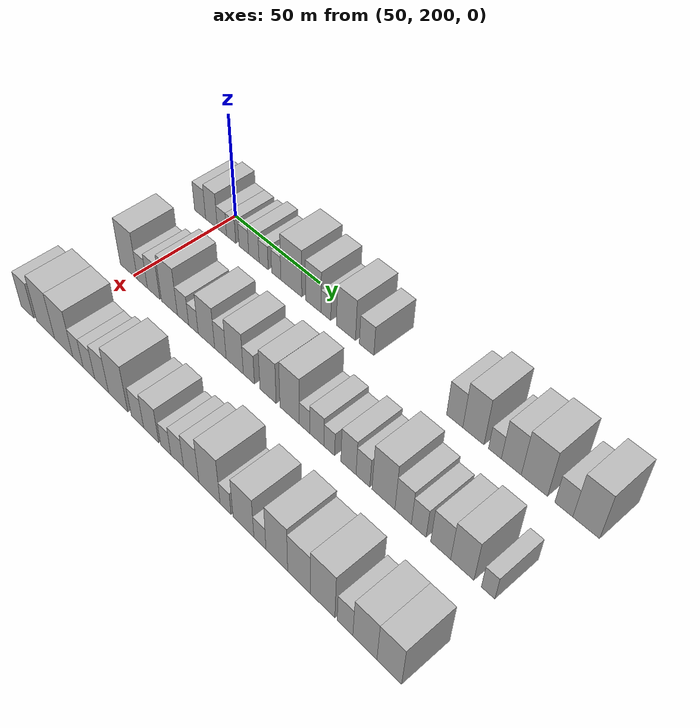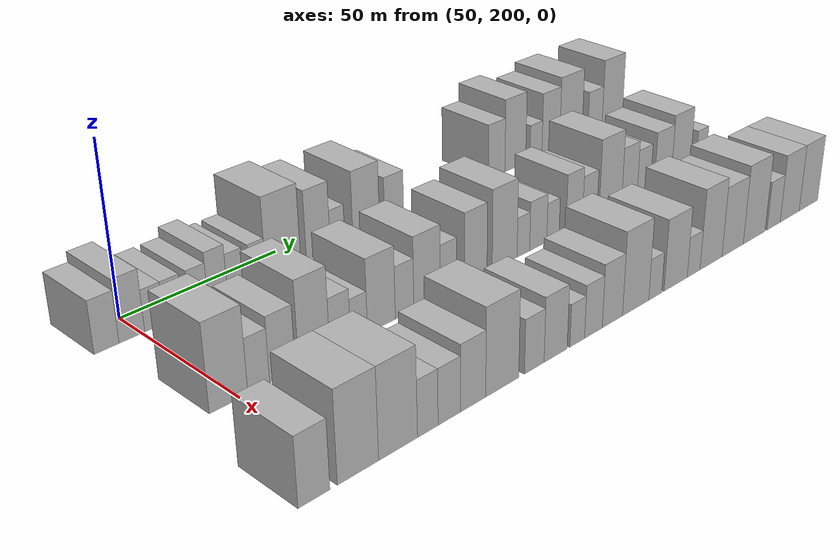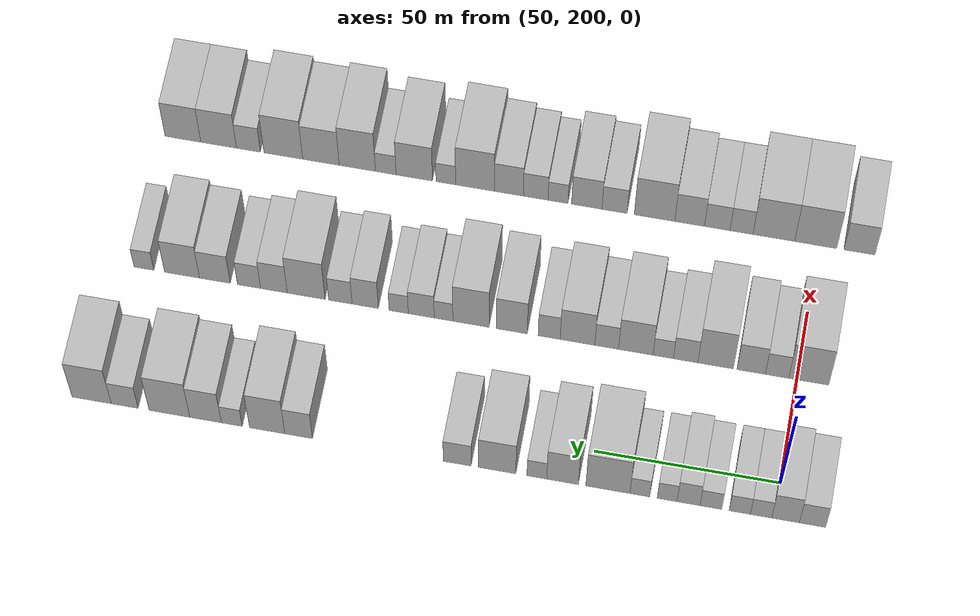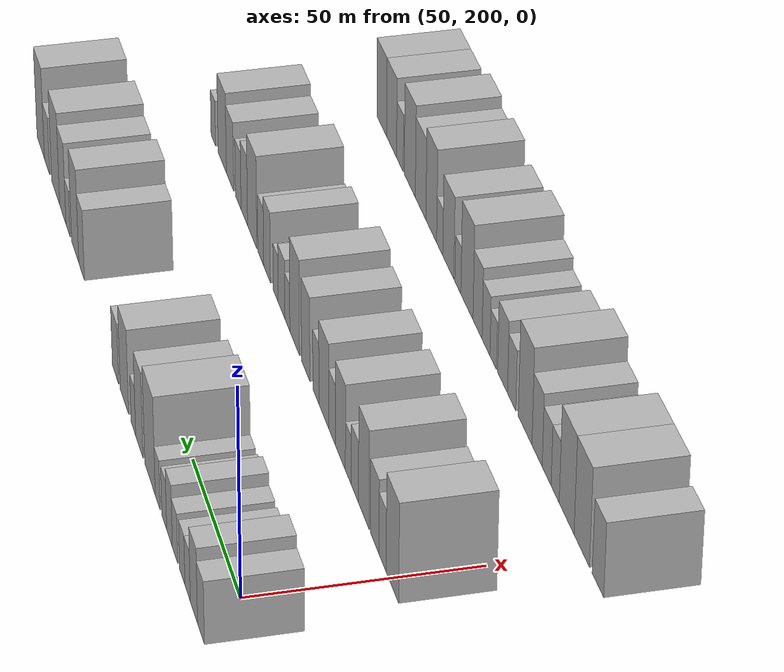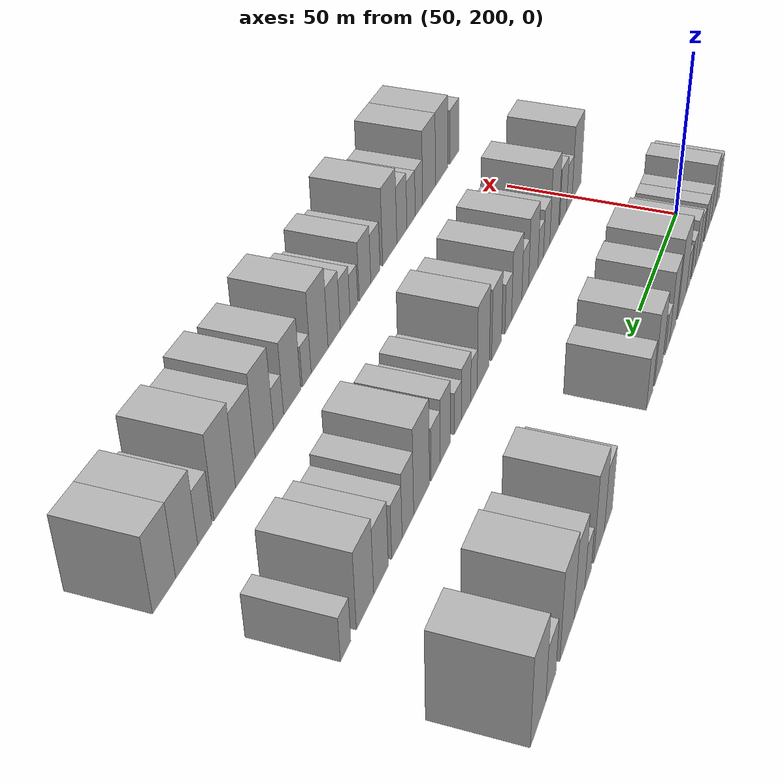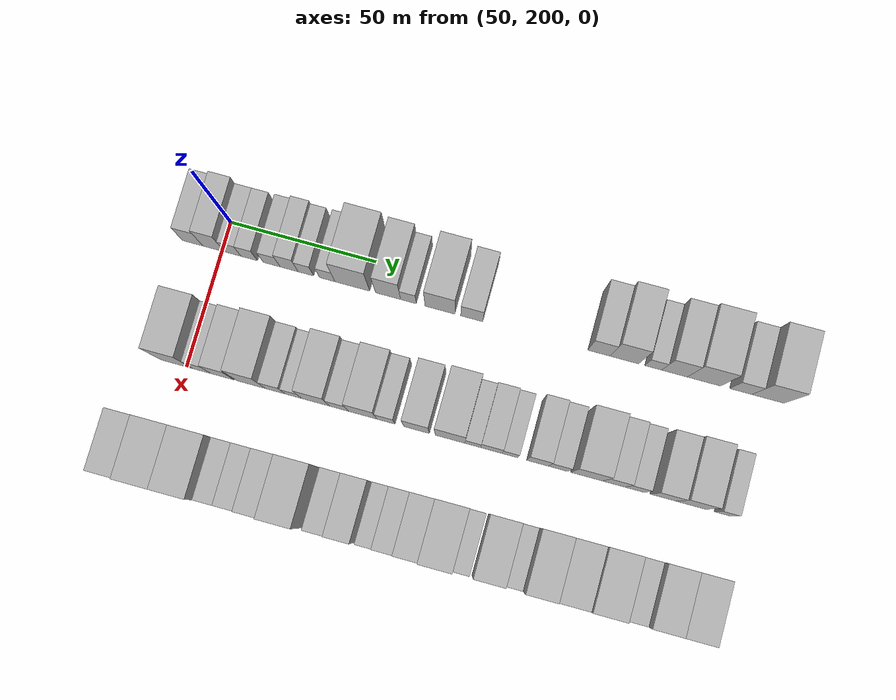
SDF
<sdf version="1.6">
 <world name="default">
  <model name="building_68">
   <static>1</static>
   <pose>50.0000 190.0364 0 0.000000 0.000000 0.000000</pose>
   <link name="link">
    <pose>0 0 7.50 0 0 0</pose>
    <collision name="collision"><geometry><box><size>20.0000 6.9937 15.0000</size></box></geometry></collision>
    <visual name="visual">
     <cast_shadows>0</cast_shadows>
     <geometry><box><size>20.0000 6.9937 15.0000</size></box></geometry>
     <material>
      <script>
       <uri>model://HANNAS_wall/materials/scripts</uri>
       <uri>model://HANNAS_wall/materials/textures</uri>
       <name>vrc/HANNAS_wall</name>
      </script>
     </material>
    </visual>
   </link>
  </model>
  <model name="building_69">
   <static>1</static>
   <pose>50.0000 197.2287 0 0.000000 0.000000 0.000000</pose>
   <link name="link">
    <pose>0 0 9.00 0 0 0</pose>
    <collision name="collision"><geometry><box><size>20.0000 7.3910 18.0000</size></box></geometry></collision>
    <visual name="visual">
     <cast_shadows>0</cast_shadows>
     <geometry><box><size>20.0000 7.3910 18.0000</size></box></geometry>
     <material>
      <script>
       <uri>model://HANNAS_wall/materials/scripts</uri>
       <uri>model://HANNAS_wall/materials/textures</uri>
       <name>vrc/HANNAS_wall</name>
      </script>
     </material>
    </visual>
   </link>
  </model>
  <model name="building_70">
   <static>1</static>
   <pose>50.0000 203.7685 0 0.000000 0.000000 0.000000</pose>
   <link name="link">
    <pose>0 0 6.00 0 0 0</pose>
    <collision name="collision"><geometry><box><size>20.0000 5.6885 12.0000</size></box></geometry></collision>
    <visual name="visual">
     <cast_shadows>0</cast_shadows>
     <geometry><box><size>20.0000 5.6885 12.0000</size></box></geometry>
     <material>
      <script>
       <uri>model://HANNAS_wall/materials/scripts</uri>
       <uri>model://HANNAS_wall/materials/textures</uri>
       <name>vrc/HANNAS_wall</name>
      </script>
     </material>
    </visual>
   </link>
  </model>
  <model name="building_71">
   <static>1</static>
   <pose>50.0000 209.4373 0 0.000000 0.000000 0.000000</pose>
   <link name="link">
    <pose>0 0 6.00 0 0 0</pose>
    <collision name="collision"><geometry><box><size>20.0000 5.6490 12.0000</size></box></geometry></collision>
    <visual name="visual">
     <cast_shadows>0</cast_shadows>
     <geometry><box><size>20.0000 5.6490 12.0000</size></box></geometry>
     <material>
      <script>
       <uri>model://HANNAS_wall/materials/scripts</uri>
       <uri>model://HANNAS_wall/materials/textures</uri>
       <name>vrc/HANNAS_wall</name>
      </script>
     </material>
    </visual>
   </link>
  </model>
  <model name="building_72">
   <static>1</static>
   <pose>50.0000 217.1640 0 0.000000 0.000000 0.000000</pose>
   <link name="link">
    <pose>0 0 6.00 0 0 0</pose>
    <collision name="collision"><geometry><box><size>20.0000 5.8044 12.0000</size></box></geometry></collision>
    <visual name="visual">
     <cast_shadows>0</cast_shadows>
     <geometry><box><size>20.0000 5.8044 12.0000</size></box></geometry>
     <material>
      <script>
       <uri>model://HANNAS_wall/materials/scripts</uri>
       <uri>model://HANNAS_wall/materials/textures</uri>
       <name>vrc/HANNAS_wall</name>
      </script>
     </material>
    </visual>
   </link>
  </model>
  <model name="building_73">
   <static>1</static>
   <pose>50.0000 223.1443 0 0.000000 0.000000 0.000000</pose>
   <link name="link">
    <pose>0 0 7.50 0 0 0</pose>
    <collision name="collision"><geometry><box><size>20.0000 6.1561 15.0000</size></box></geometry></collision>
    <visual name="visual">
     <cast_shadows>0</cast_shadows>
     <geometry><box><size>20.0000 6.1561 15.0000</size></box></geometry>
     <material>
      <script>
       <uri>model://HANNAS_wall/materials/scripts</uri>
       <uri>model://HANNAS_wall/materials/textures</uri>
       <name>vrc/HANNAS_wall</name>
      </script>
     </material>
    </visual>
   </link>
  </model>
  <model name="building_74">
   <static>1</static>
   <pose>50.0000 228.8796 0 0.000000 0.000000 0.000000</pose>
   <link name="link">
    <pose>0 0 6.00 0 0 0</pose>
    <collision name="collision"><geometry><box><size>20.0000 5.3145 12.0000</size></box></geometry></collision>
    <visual name="visual">
     <cast_shadows>0</cast_shadows>
     <geometry><box><size>20.0000 5.3145 12.0000</size></box></geometry>
     <material>
      <script>
       <uri>model://HANNAS_wall/materials/scripts</uri>
       <uri>model://HANNAS_wall/materials/textures</uri>
       <name>vrc/HANNAS_wall</name>
      </script>
     </material>
    </visual>
   </link>
  </model>
  <model name="building_75">
   <static>1</static>
   <pose>50.0000 236.1884 0 0.000000 0.000000 0.000000</pose>
   <link name="link">
    <pose>0 0 6.00 0 0 0</pose>
    <collision name="collision"><geometry><box><size>20.0000 5.3031 12.0000</size></box></geometry></collision>
    <visual name="visual">
     <cast_shadows>0</cast_shadows>
     <geometry><box><size>20.0000 5.3031 12.0000</size></box></geometry>
     <material>
      <script>
       <uri>model://HANNAS_wall/materials/scripts</uri>
       <uri>model://HANNAS_wall/materials/textures</uri>
       <name>vrc/HANNAS_wall</name>
      </script>
     </material>
    </visual>
   </link>
  </model>
  <model name="building_76">
   <static>1</static>
   <pose>50.0000 244.7735 0 0.000000 0.000000 0.000000</pose>
   <link name="link">
    <pose>0 0 12.00 0 0 0</pose>
    <collision name="collision"><geometry><box><size>20.0000 11.8672 24.0000</size></box></geometry></collision>
    <visual name="visual">
     <cast_shadows>0</cast_shadows>
     <geometry><box><size>20.0000 11.8672 24.0000</size></box></geometry>
     <material>
      <script>
       <uri>model://HANNAS_wall/materials/scripts</uri>
       <uri>model://HANNAS_wall/materials/textures</uri>
       <name>vrc/HANNAS_wall</name>
      </script>
     </material>
    </visual>
   </link>
  </model>
  <model name="building_77">
   <static>1</static>
   <pose>50.0000 256.9779 0 0.000000 0.000000 0.000000</pose>
   <link name="link">
    <pose>0 0 10.50 0 0 0</pose>
    <collision name="collision"><geometry><box><size>20.0000 8.5415 21.0000</size></box></geometry></collision>
    <visual name="visual">
     <cast_shadows>0</cast_shadows>
     <geometry><box><size>20.0000 8.5415 21.0000</size></box></geometry>
     <material>
      <script>
       <uri>model://HANNAS_wall/materials/scripts</uri>
       <uri>model://HANNAS_wall/materials/textures</uri>
       <name>vrc/HANNAS_wall</name>
      </script>
     </material>
    </visual>
   </link>
  </model>
  <model name="building_78">
   <static>1</static>
   <pose>50.0000 263.9040 0 0.000000 0.000000 0.000000</pose>
   <link name="link">
    <pose>0 0 6.00 0 0 0</pose>
    <collision name="collision"><geometry><box><size>20.0000 5.3107 12.0000</size></box></geometry></collision>
    <visual name="visual">
     <cast_shadows>0</cast_shadows>
     <geometry><box><size>20.0000 5.3107 12.0000</size></box></geometry>
     <material>
      <script>
       <uri>model://HANNAS_wall/materials/scripts</uri>
       <uri>model://HANNAS_wall/materials/textures</uri>
       <name>vrc/HANNAS_wall</name>
      </script>
     </material>
    </visual>
   </link>
  </model>
  <model name="building_79">
   <static>1</static>
   <pose>50.0000 274.6052 0 0.000000 0.000000 0.000000</pose>
   <link name="link">
    <pose>0 0 10.50 0 0 0</pose>
    <collision name="collision"><geometry><box><size>20.0000 10.0915 21.0000</size></box></geometry></collision>
    <visual name="visual">
     <cast_shadows>0</cast_shadows>
     <geometry><box><size>20.0000 10.0915 21.0000</size></box></geometry>
     <material>
      <script>
       <uri>model://HANNAS_wall/materials/scripts</uri>
       <uri>model://HANNAS_wall/materials/textures</uri>
       <name>vrc/HANNAS_wall</name>
      </script>
     </material>
    </visual>
   </link>
  </model>
  <model name="building_80">
   <static>1</static>
   <pose>50.0000 285.3946 0 0.000000 0.000000 0.000000</pose>
   <link name="link">
    <pose>0 0 7.50 0 0 0</pose>
    <collision name="collision"><geometry><box><size>20.0000 7.4874 15.0000</size></box></geometry></collision>
    <visual name="visual">
     <cast_shadows>0</cast_shadows>
     <geometry><box><size>20.0000 7.4874 15.0000</size></box></geometry>
     <material>
      <script>
       <uri>model://HANNAS_wall/materials/scripts</uri>
       <uri>model://HANNAS_wall/materials/textures</uri>
       <name>vrc/HANNAS_wall</name>
      </script>
     </material>
    </visual>
   </link>
  </model>
  <model name="building_81">
   <static>1</static>
   <pose>50.0000 328.4054 0 0.000000 0.000000 0.000000</pose>
   <link name="link">
    <pose>0 0 9.00 0 0 0</pose>
    <collision name="collision"><geometry><box><size>20.0000 7.5114 18.0000</size></box></geometry></collision>
    <visual name="visual">
     <cast_shadows>0</cast_shadows>
     <geometry><box><size>20.0000 7.5114 18.0000</size></box></geometry>
     <material>
      <script>
       <uri>model://HANNAS_wall/materials/scripts</uri>
       <uri>model://HANNAS_wall/materials/textures</uri>
       <name>vrc/HANNAS_wall</name>
      </script>
     </material>
    </visual>
   </link>
  </model>
  <model name="building_82">
   <static>1</static>
   <pose>50.0000 336.9663 0 0.000000 0.000000 0.000000</pose>
   <link name="link">
    <pose>0 0 12.00 0 0 0</pose>
    <collision name="collision"><geometry><box><size>20.0000 9.6104 24.0000</size></box></geometry></collision>
    <visual name="visual">
     <cast_shadows>0</cast_shadows>
     <geometry><box><size>20.0000 9.6104 24.0000</size></box></geometry>
     <material>
      <script>
       <uri>model://HANNAS_wall/materials/scripts</uri>
       <uri>model://HANNAS_wall/materials/textures</uri>
       <name>vrc/HANNAS_wall</name>
      </script>
     </material>
    </visual>
   </link>
  </model>
  <model name="building_83">
   <static>1</static>
   <pose>50.0000 346.6145 0 0.000000 0.000000 0.000000</pose>
   <link name="link">
    <pose>0 0 6.00 0 0 0</pose>
    <collision name="collision"><geometry><box><size>20.0000 5.6861 12.0000</size></box></geometry></collision>
    <visual name="visual">
     <cast_shadows>0</cast_shadows>
     <geometry><box><size>20.0000 5.6861 12.0000</size></box></geometry>
     <material>
      <script>
       <uri>model://HANNAS_wall/materials/scripts</uri>
       <uri>model://HANNAS_wall/materials/textures</uri>
       <name>vrc/HANNAS_wall</name>
      </script>
     </material>
    </visual>
   </link>
  </model>
  <model name="building_84">
   <static>1</static>
   <pose>50.0000 353.7754 0 0.000000 0.000000 0.000000</pose>
   <link name="link">
    <pose>0 0 10.50 0 0 0</pose>
    <collision name="collision"><geometry><box><size>20.0000 8.6357 21.0000</size></box></geometry></collision>
    <visual name="visual">
     <cast_shadows>0</cast_shadows>
     <geometry><box><size>20.0000 8.6357 21.0000</size></box></geometry>
     <material>
      <script>
       <uri>model://HANNAS_wall/materials/scripts</uri>
       <uri>model://HANNAS_wall/materials/textures</uri>
       <name>vrc/HANNAS_wall</name>
      </script>
     </material>
    </visual>
   </link>
  </model>
  <model name="building_85">
   <static>1</static>
   <pose>50.0000 363.6694 0 0.000000 0.000000 0.000000</pose>
   <link name="link">
    <pose>0 0 12.00 0 0 0</pose>
    <collision name="collision"><geometry><box><size>20.0000 11.1523 24.0000</size></box></geometry></collision>
    <visual name="visual">
     <cast_shadows>0</cast_shadows>
     <geometry><box><size>20.0000 11.1523 24.0000</size></box></geometry>
     <material>
      <script>
       <uri>model://HANNAS_wall/materials/scripts</uri>
       <uri>model://HANNAS_wall/materials/textures</uri>
       <name>vrc/HANNAS_wall</name>
      </script>
     </material>
    </visual>
   </link>
  </model>
  <model name="building_86">
   <static>1</static>
   <pose>50.0000 375.9354 0 0.000000 0.000000 0.000000</pose>
   <link name="link">
    <pose>0 0 7.50 0 0 0</pose>
    <collision name="collision"><geometry><box><size>20.0000 7.3797 15.0000</size></box></geometry></collision>
    <visual name="visual">
     <cast_shadows>0</cast_shadows>
     <geometry><box><size>20.0000 7.3797 15.0000</size></box></geometry>
     <material>
      <script>
       <uri>model://HANNAS_wall/materials/scripts</uri>
       <uri>model://HANNAS_wall/materials/textures</uri>
       <name>vrc/HANNAS_wall</name>
      </script>
     </material>
    </visual>
   </link>
  </model>
  <model name="building_87">
   <static>1</static>
   <pose>50.0000 384.9936 0 0.000000 0.000000 0.000000</pose>
   <link name="link">
    <pose>0 0 12.00 0 0 0</pose>
    <collision name="collision"><geometry><box><size>20.0000 10.7367 24.0000</size></box></geometry></collision>
    <visual name="visual">
     <cast_shadows>0</cast_shadows>
     <geometry><box><size>20.0000 10.7367 24.0000</size></box></geometry>
     <material>
      <script>
       <uri>model://HANNAS_wall/materials/scripts</uri>
       <uri>model://HANNAS_wall/materials/textures</uri>
       <name>vrc/HANNAS_wall</name>
      </script>
     </material>
    </visual>
   </link>
  </model>
  <model name="building_154">
   <static>1</static>
   <pose>90.0000 196.8534 0 0.000000 0.000000 0.000000</pose>
   <link name="link">
    <pose>0 0 12.00 0 0 0</pose>
    <collision name="collision"><geometry><box><size>20.0000 10.8442 24.0000</size></box></geometry></collision>
    <visual name="visual">
     <cast_shadows>0</cast_shadows>
     <geometry><box><size>20.0000 10.8442 24.0000</size></box></geometry>
     <material>
      <script>
       <uri>model://HANNAS_wall/materials/scripts</uri>
       <uri>model://HANNAS_wall/materials/textures</uri>
       <name>vrc/HANNAS_wall</name>
      </script>
     </material>
    </visual>
   </link>
  </model>
  <model name="building_155">
   <static>1</static>
   <pose>90.0000 205.4529 0 0.000000 0.000000 0.000000</pose>
   <link name="link">
    <pose>0 0 7.50 0 0 0</pose>
    <collision name="collision"><geometry><box><size>20.0000 6.3548 15.0000</size></box></geometry></collision>
    <visual name="visual">
     <cast_shadows>0</cast_shadows>
     <geometry><box><size>20.0000 6.3548 15.0000</size></box></geometry>
     <material>
      <script>
       <uri>model://HANNAS_wall/materials/scripts</uri>
       <uri>model://HANNAS_wall/materials/textures</uri>
       <name>vrc/HANNAS_wall</name>
      </script>
     </material>
    </visual>
   </link>
  </model>
  <model name="building_156">
   <static>1</static>
   <pose>90.0000 212.4758 0 0.000000 0.000000 0.000000</pose>
   <link name="link">
    <pose>0 0 9.00 0 0 0</pose>
    <collision name="collision"><geometry><box><size>20.0000 7.6910 18.0000</size></box></geometry></collision>
    <visual name="visual">
     <cast_shadows>0</cast_shadows>
     <geometry><box><size>20.0000 7.6910 18.0000</size></box></geometry>
     <material>
      <script>
       <uri>model://HANNAS_wall/materials/scripts</uri>
       <uri>model://HANNAS_wall/materials/textures</uri>
       <name>vrc/HANNAS_wall</name>
      </script>
     </material>
    </visual>
   </link>
  </model>
  <model name="building_157">
   <static>1</static>
   <pose>90.0000 222.1453 0 0.000000 0.000000 0.000000</pose>
   <link name="link">
    <pose>0 0 12.00 0 0 0</pose>
    <collision name="collision"><geometry><box><size>20.0000 9.6479 24.0000</size></box></geometry></collision>
    <visual name="visual">
     <cast_shadows>0</cast_shadows>
     <geometry><box><size>20.0000 9.6479 24.0000</size></box></geometry>
     <material>
      <script>
       <uri>model://HANNAS_wall/materials/scripts</uri>
       <uri>model://HANNAS_wall/materials/textures</uri>
       <name>vrc/HANNAS_wall</name>
      </script>
     </material>
    </visual>
   </link>
  </model>
  <model name="building_158">
   <static>1</static>
   <pose>90.0000 230.3066 0 0.000000 0.000000 0.000000</pose>
   <link name="link">
    <pose>0 0 7.50 0 0 0</pose>
    <collision name="collision"><geometry><box><size>20.0000 6.6748 15.0000</size></box></geometry></collision>
    <visual name="visual">
     <cast_shadows>0</cast_shadows>
     <geometry><box><size>20.0000 6.6748 15.0000</size></box></geometry>
     <material>
      <script>
       <uri>model://HANNAS_wall/materials/scripts</uri>
       <uri>model://HANNAS_wall/materials/textures</uri>
       <name>vrc/HANNAS_wall</name>
      </script>
     </material>
    </visual>
   </link>
  </model>
  <model name="building_159">
   <static>1</static>
   <pose>90.0000 236.4164 0 0.000000 0.000000 0.000000</pose>
   <link name="link">
    <pose>0 0 6.00 0 0 0</pose>
    <collision name="collision"><geometry><box><size>20.0000 5.5449 12.0000</size></box></geometry></collision>
    <visual name="visual">
     <cast_shadows>0</cast_shadows>
     <geometry><box><size>20.0000 5.5449 12.0000</size></box></geometry>
     <material>
      <script>
       <uri>model://HANNAS_wall/materials/scripts</uri>
       <uri>model://HANNAS_wall/materials/textures</uri>
       <name>vrc/HANNAS_wall</name>
      </script>
     </material>
    </visual>
   </link>
  </model>
  <model name="building_160">
   <static>1</static>
   <pose>90.0000 243.9101 0 0.000000 0.000000 0.000000</pose>
   <link name="link">
    <pose>0 0 10.50 0 0 0</pose>
    <collision name="collision"><geometry><box><size>20.0000 9.4424 21.0000</size></box></geometry></collision>
    <visual name="visual">
     <cast_shadows>0</cast_shadows>
     <geometry><box><size>20.0000 9.4424 21.0000</size></box></geometry>
     <material>
      <script>
       <uri>model://HANNAS_wall/materials/scripts</uri>
       <uri>model://HANNAS_wall/materials/textures</uri>
       <name>vrc/HANNAS_wall</name>
      </script>
     </material>
    </visual>
   </link>
  </model>
  <model name="building_161">
   <static>1</static>
   <pose>90.0000 251.8689 0 0.000000 0.000000 0.000000</pose>
   <link name="link">
    <pose>0 0 7.50 0 0 0</pose>
    <collision name="collision"><geometry><box><size>20.0000 6.4752 15.0000</size></box></geometry></collision>
    <visual name="visual">
     <cast_shadows>0</cast_shadows>
     <geometry><box><size>20.0000 6.4752 15.0000</size></box></geometry>
     <material>
      <script>
       <uri>model://HANNAS_wall/materials/scripts</uri>
       <uri>model://HANNAS_wall/materials/textures</uri>
       <name>vrc/HANNAS_wall</name>
      </script>
     </material>
    </visual>
   </link>
  </model>
  <model name="building_162">
   <static>1</static>
   <pose>90.0000 259.8492 0 0.000000 0.000000 0.000000</pose>
   <link name="link">
    <pose>0 0 10.50 0 0 0</pose>
    <collision name="collision"><geometry><box><size>20.0000 9.4855 21.0000</size></box></geometry></collision>
    <visual name="visual">
     <cast_shadows>0</cast_shadows>
     <geometry><box><size>20.0000 9.4855 21.0000</size></box></geometry>
     <material>
      <script>
       <uri>model://HANNAS_wall/materials/scripts</uri>
       <uri>model://HANNAS_wall/materials/textures</uri>
       <name>vrc/HANNAS_wall</name>
      </script>
     </material>
    </visual>
   </link>
  </model>
  <model name="building_163">
   <static>1</static>
   <pose>90.0000 267.6043 0 0.000000 0.000000 0.000000</pose>
   <link name="link">
    <pose>0 0 7.50 0 0 0</pose>
    <collision name="collision"><geometry><box><size>20.0000 6.0247 15.0000</size></box></geometry></collision>
    <visual name="visual">
     <cast_shadows>0</cast_shadows>
     <geometry><box><size>20.0000 6.0247 15.0000</size></box></geometry>
     <material>
      <script>
       <uri>model://HANNAS_wall/materials/scripts</uri>
       <uri>model://HANNAS_wall/materials/textures</uri>
       <name>vrc/HANNAS_wall</name>
      </script>
     </material>
    </visual>
   </link>
  </model>
  <model name="building_164">
   <static>1</static>
   <pose>90.0000 277.8741 0 0.000000 0.000000 0.000000</pose>
   <link name="link">
    <pose>0 0 10.50 0 0 0</pose>
    <collision name="collision"><geometry><box><size>20.0000 8.5149 21.0000</size></box></geometry></collision>
    <visual name="visual">
     <cast_shadows>0</cast_shadows>
     <geometry><box><size>20.0000 8.5149 21.0000</size></box></geometry>
     <material>
      <script>
       <uri>model://HANNAS_wall/materials/scripts</uri>
       <uri>model://HANNAS_wall/materials/textures</uri>
       <name>vrc/HANNAS_wall</name>
      </script>
     </material>
    </visual>
   </link>
  </model>
  <model name="building_165">
   <static>1</static>
   <pose>90.0000 289.0942 0 0.000000 0.000000 0.000000</pose>
   <link name="link">
    <pose>0 0 12.00 0 0 0</pose>
    <collision name="collision"><geometry><box><size>20.0000 9.9253 24.0000</size></box></geometry></collision>
    <visual name="visual">
     <cast_shadows>0</cast_shadows>
     <geometry><box><size>20.0000 9.9253 24.0000</size></box></geometry>
     <material>
      <script>
       <uri>model://HANNAS_wall/materials/scripts</uri>
       <uri>model://HANNAS_wall/materials/textures</uri>
       <name>vrc/HANNAS_wall</name>
      </script>
     </material>
    </visual>
   </link>
  </model>
  <model name="building_166">
   <static>1</static>
   <pose>90.0000 296.6292 0 0.000000 0.000000 0.000000</pose>
   <link name="link">
    <pose>0 0 6.00 0 0 0</pose>
    <collision name="collision"><geometry><box><size>20.0000 5.1447 12.0000</size></box></geometry></collision>
    <visual name="visual">
     <cast_shadows>0</cast_shadows>
     <geometry><box><size>20.0000 5.1447 12.0000</size></box></geometry>
     <material>
      <script>
       <uri>model://HANNAS_wall/materials/scripts</uri>
       <uri>model://HANNAS_wall/materials/textures</uri>
       <name>vrc/HANNAS_wall</name>
      </script>
     </material>
    </visual>
   </link>
  </model>
  <model name="building_167">
   <static>1</static>
   <pose>90.0000 302.7747 0 0.000000 0.000000 0.000000</pose>
   <link name="link">
    <pose>0 0 7.50 0 0 0</pose>
    <collision name="collision"><geometry><box><size>20.0000 7.1465 15.0000</size></box></geometry></collision>
    <visual name="visual">
     <cast_shadows>0</cast_shadows>
     <geometry><box><size>20.0000 7.1465 15.0000</size></box></geometry>
     <material>
      <script>
       <uri>model://HANNAS_wall/materials/scripts</uri>
       <uri>model://HANNAS_wall/materials/textures</uri>
       <name>vrc/HANNAS_wall</name>
      </script>
     </material>
    </visual>
   </link>
  </model>
  <model name="building_168">
   <static>1</static>
   <pose>90.0000 308.9719 0 0.000000 0.000000 0.000000</pose>
   <link name="link">
    <pose>0 0 6.00 0 0 0</pose>
    <collision name="collision"><geometry><box><size>20.0000 5.2478 12.0000</size></box></geometry></collision>
    <visual name="visual">
     <cast_shadows>0</cast_shadows>
     <geometry><box><size>20.0000 5.2478 12.0000</size></box></geometry>
     <material>
      <script>
       <uri>model://HANNAS_wall/materials/scripts</uri>
       <uri>model://HANNAS_wall/materials/textures</uri>
       <name>vrc/HANNAS_wall</name>
      </script>
     </material>
    </visual>
   </link>
  </model>
  <model name="building_169">
   <static>1</static>
   <pose>90.0000 318.2217 0 0.000000 0.000000 0.000000</pose>
   <link name="link">
    <pose>0 0 9.00 0 0 0</pose>
    <collision name="collision"><geometry><box><size>20.0000 7.2518 18.0000</size></box></geometry></collision>
    <visual name="visual">
     <cast_shadows>0</cast_shadows>
     <geometry><box><size>20.0000 7.2518 18.0000</size></box></geometry>
     <material>
      <script>
       <uri>model://HANNAS_wall/materials/scripts</uri>
       <uri>model://HANNAS_wall/materials/textures</uri>
       <name>vrc/HANNAS_wall</name>
      </script>
     </material>
    </visual>
   </link>
  </model>
  <model name="building_170">
   <static>1</static>
   <pose>90.0000 325.0841 0 0.000000 0.000000 0.000000</pose>
   <link name="link">
    <pose>0 0 7.50 0 0 0</pose>
    <collision name="collision"><geometry><box><size>20.0000 6.4731 15.0000</size></box></geometry></collision>
    <visual name="visual">
     <cast_shadows>0</cast_shadows>
     <geometry><box><size>20.0000 6.4731 15.0000</size></box></geometry>
     <material>
      <script>
       <uri>model://HANNAS_wall/materials/scripts</uri>
       <uri>model://HANNAS_wall/materials/textures</uri>
       <name>vrc/HANNAS_wall</name>
      </script>
     </material>
    </visual>
   </link>
  </model>
  <model name="building_171">
   <static>1</static>
   <pose>90.0000 334.5607 0 0.000000 0.000000 0.000000</pose>
   <link name="link">
    <pose>0 0 12.00 0 0 0</pose>
    <collision name="collision"><geometry><box><size>20.0000 10.4802 24.0000</size></box></geometry></collision>
    <visual name="visual">
     <cast_shadows>0</cast_shadows>
     <geometry><box><size>20.0000 10.4802 24.0000</size></box></geometry>
     <material>
      <script>
       <uri>model://HANNAS_wall/materials/scripts</uri>
       <uri>model://HANNAS_wall/materials/textures</uri>
       <name>vrc/HANNAS_wall</name>
      </script>
     </material>
    </visual>
   </link>
  </model>
  <model name="building_172">
   <static>1</static>
   <pose>90.0000 343.4940 0 0.000000 0.000000 0.000000</pose>
   <link name="link">
    <pose>0 0 9.00 0 0 0</pose>
    <collision name="collision"><geometry><box><size>20.0000 7.3863 18.0000</size></box></geometry></collision>
    <visual name="visual">
     <cast_shadows>0</cast_shadows>
     <geometry><box><size>20.0000 7.3863 18.0000</size></box></geometry>
     <material>
      <script>
       <uri>model://HANNAS_wall/materials/scripts</uri>
       <uri>model://HANNAS_wall/materials/textures</uri>
       <name>vrc/HANNAS_wall</name>
      </script>
     </material>
    </visual>
   </link>
  </model>
  <model name="building_173">
   <static>1</static>
   <pose>90.0000 350.4000 0 0.000000 0.000000 0.000000</pose>
   <link name="link">
    <pose>0 0 7.50 0 0 0</pose>
    <collision name="collision"><geometry><box><size>20.0000 6.4258 15.0000</size></box></geometry></collision>
    <visual name="visual">
     <cast_shadows>0</cast_shadows>
     <geometry><box><size>20.0000 6.4258 15.0000</size></box></geometry>
     <material>
      <script>
       <uri>model://HANNAS_wall/materials/scripts</uri>
       <uri>model://HANNAS_wall/materials/textures</uri>
       <name>vrc/HANNAS_wall</name>
      </script>
     </material>
    </visual>
   </link>
  </model>
  <model name="building_174">
   <static>1</static>
   <pose>90.0000 359.8848 0 0.000000 0.000000 0.000000</pose>
   <link name="link">
    <pose>0 0 9.00 0 0 0</pose>
    <collision name="collision"><geometry><box><size>20.0000 8.5437 18.0000</size></box></geometry></collision>
    <visual name="visual">
     <cast_shadows>0</cast_shadows>
     <geometry><box><size>20.0000 8.5437 18.0000</size></box></geometry>
     <material>
      <script>
       <uri>model://HANNAS_wall/materials/scripts</uri>
       <uri>model://HANNAS_wall/materials/textures</uri>
       <name>vrc/HANNAS_wall</name>
      </script>
     </material>
    </visual>
   </link>
  </model>
  <model name="building_175">
   <static>1</static>
   <pose>90.0000 369.0201 0 0.000000 0.000000 0.000000</pose>
   <link name="link">
    <pose>0 0 10.50 0 0 0</pose>
    <collision name="collision"><geometry><box><size>20.0000 9.7268 21.0000</size></box></geometry></collision>
    <visual name="visual">
     <cast_shadows>0</cast_shadows>
     <geometry><box><size>20.0000 9.7268 21.0000</size></box></geometry>
     <material>
      <script>
       <uri>model://HANNAS_wall/materials/scripts</uri>
       <uri>model://HANNAS_wall/materials/textures</uri>
       <name>vrc/HANNAS_wall</name>
      </script>
     </material>
    </visual>
   </link>
  </model>
  <model name="building_176">
   <static>1</static>
   <pose>90.0000 379.6342 0 0.000000 0.000000 0.000000</pose>
   <link name="link">
    <pose>0 0 6.00 0 0 0</pose>
    <collision name="collision"><geometry><box><size>20.0000 5.5015 12.0000</size></box></geometry></collision>
    <visual name="visual">
     <cast_shadows>0</cast_shadows>
     <geometry><box><size>20.0000 5.5015 12.0000</size></box></geometry>
     <material>
      <script>
       <uri>model://HANNAS_wall/materials/scripts</uri>
       <uri>model://HANNAS_wall/materials/textures</uri>
       <name>vrc/HANNAS_wall</name>
      </script>
     </material>
    </visual>
   </link>
  </model>
  <model name="building_239">
   <static>1</static>
   <pose>130.0000 188.6639 0 0.000000 0.000000 0.000000</pose>
   <link name="link">
    <pose>0 0 9.00 0 0 0</pose>
    <collision name="collision"><geometry><box><size>20.0000 8.5294 18.0000</size></box></geometry></collision>
    <visual name="visual">
     <cast_shadows>0</cast_shadows>
     <geometry><box><size>20.0000 8.5294 18.0000</size></box></geometry>
     <material>
      <script>
       <uri>model://HANNAS_wall/materials/scripts</uri>
       <uri>model://HANNAS_wall/materials/textures</uri>
       <name>vrc/HANNAS_wall</name>
      </script>
     </material>
    </visual>
   </link>
  </model>
  <model name="building_240">
   <static>1</static>
   <pose>130.0000 200.7323 0 0.000000 0.000000 0.000000</pose>
   <link name="link">
    <pose>0 0 12.00 0 0 0</pose>
    <collision name="collision"><geometry><box><size>20.0000 11.6072 24.0000</size></box></geometry></collision>
    <visual name="visual">
     <cast_shadows>0</cast_shadows>
     <geometry><box><size>20.0000 11.6072 24.0000</size></box></geometry>
     <material>
      <script>
       <uri>model://HANNAS_wall/materials/scripts</uri>
       <uri>model://HANNAS_wall/materials/textures</uri>
       <name>vrc/HANNAS_wall</name>
      </script>
     </material>
    </visual>
   </link>
  </model>
  <model name="building_241">
   <static>1</static>
   <pose>130.0000 212.2852 0 0.000000 0.000000 0.000000</pose>
   <link name="link">
    <pose>0 0 12.00 0 0 0</pose>
    <collision name="collision"><geometry><box><size>20.0000 11.4986 24.0000</size></box></geometry></collision>
    <visual name="visual">
     <cast_shadows>0</cast_shadows>
     <geometry><box><size>20.0000 11.4986 24.0000</size></box></geometry>
     <material>
      <script>
       <uri>model://HANNAS_wall/materials/scripts</uri>
       <uri>model://HANNAS_wall/materials/textures</uri>
       <name>vrc/HANNAS_wall</name>
      </script>
     </material>
    </visual>
   </link>
  </model>
  <model name="building_242">
   <static>1</static>
   <pose>130.0000 221.2168 0 0.000000 0.000000 0.000000</pose>
   <link name="link">
    <pose>0 0 7.50 0 0 0</pose>
    <collision name="collision"><geometry><box><size>20.0000 6.3645 15.0000</size></box></geometry></collision>
    <visual name="visual">
     <cast_shadows>0</cast_shadows>
     <geometry><box><size>20.0000 6.3645 15.0000</size></box></geometry>
     <material>
      <script>
       <uri>model://HANNAS_wall/materials/scripts</uri>
       <uri>model://HANNAS_wall/materials/textures</uri>
       <name>vrc/HANNAS_wall</name>
      </script>
     </material>
    </visual>
   </link>
  </model>
  <model name="building_243">
   <static>1</static>
   <pose>130.0000 227.9272 0 0.000000 0.000000 0.000000</pose>
   <link name="link">
    <pose>0 0 7.50 0 0 0</pose>
    <collision name="collision"><geometry><box><size>20.0000 7.0564 15.0000</size></box></geometry></collision>
    <visual name="visual">
     <cast_shadows>0</cast_shadows>
     <geometry><box><size>20.0000 7.0564 15.0000</size></box></geometry>
     <material>
      <script>
       <uri>model://HANNAS_wall/materials/scripts</uri>
       <uri>model://HANNAS_wall/materials/textures</uri>
       <name>vrc/HANNAS_wall</name>
      </script>
     </material>
    </visual>
   </link>
  </model>
  <model name="building_244">
   <static>1</static>
   <pose>130.0000 235.5909 0 0.000000 0.000000 0.000000</pose>
   <link name="link">
    <pose>0 0 9.00 0 0 0</pose>
    <collision name="collision"><geometry><box><size>20.0000 8.2710 18.0000</size></box></geometry></collision>
    <visual name="visual">
     <cast_shadows>0</cast_shadows>
     <geometry><box><size>20.0000 8.2710 18.0000</size></box></geometry>
     <material>
      <script>
       <uri>model://HANNAS_wall/materials/scripts</uri>
       <uri>model://HANNAS_wall/materials/textures</uri>
       <name>vrc/HANNAS_wall</name>
      </script>
     </material>
    </visual>
   </link>
  </model>
  <model name="building_245">
   <static>1</static>
   <pose>130.0000 245.3354 0 0.000000 0.000000 0.000000</pose>
   <link name="link">
    <pose>0 0 12.00 0 0 0</pose>
    <collision name="collision"><geometry><box><size>20.0000 11.2181 24.0000</size></box></geometry></collision>
    <visual name="visual">
     <cast_shadows>0</cast_shadows>
     <geometry><box><size>20.0000 11.2181 24.0000</size></box></geometry>
     <material>
      <script>
       <uri>model://HANNAS_wall/materials/scripts</uri>
       <uri>model://HANNAS_wall/materials/textures</uri>
       <name>vrc/HANNAS_wall</name>
      </script>
     </material>
    </visual>
   </link>
  </model>
  <model name="building_246">
   <static>1</static>
   <pose>130.0000 256.4407 0 0.000000 0.000000 0.000000</pose>
   <link name="link">
    <pose>0 0 7.50 0 0 0</pose>
    <collision name="collision"><geometry><box><size>20.0000 6.9925 15.0000</size></box></geometry></collision>
    <visual name="visual">
     <cast_shadows>0</cast_shadows>
     <geometry><box><size>20.0000 6.9925 15.0000</size></box></geometry>
     <material>
      <script>
       <uri>model://HANNAS_wall/materials/scripts</uri>
       <uri>model://HANNAS_wall/materials/textures</uri>
       <name>vrc/HANNAS_wall</name>
      </script>
     </material>
    </visual>
   </link>
  </model>
  <model name="building_247">
   <static>1</static>
   <pose>130.0000 264.1708 0 0.000000 0.000000 0.000000</pose>
   <link name="link">
    <pose>0 0 9.00 0 0 0</pose>
    <collision name="collision"><geometry><box><size>20.0000 8.4676 18.0000</size></box></geometry></collision>
    <visual name="visual">
     <cast_shadows>0</cast_shadows>
     <geometry><box><size>20.0000 8.4676 18.0000</size></box></geometry>
     <material>
      <script>
       <uri>model://HANNAS_wall/materials/scripts</uri>
       <uri>model://HANNAS_wall/materials/textures</uri>
       <name>vrc/HANNAS_wall</name>
      </script>
     </material>
    </visual>
   </link>
  </model>
  <model name="building_248">
   <static>1</static>
   <pose>130.0000 272.1838 0 0.000000 0.000000 0.000000</pose>
   <link name="link">
    <pose>0 0 6.00 0 0 0</pose>
    <collision name="collision"><geometry><box><size>20.0000 5.5583 12.0000</size></box></geometry></collision>
    <visual name="visual">
     <cast_shadows>0</cast_shadows>
     <geometry><box><size>20.0000 5.5583 12.0000</size></box></geometry>
     <material>
      <script>
       <uri>model://HANNAS_wall/materials/scripts</uri>
       <uri>model://HANNAS_wall/materials/textures</uri>
       <name>vrc/HANNAS_wall</name>
      </script>
     </material>
    </visual>
   </link>
  </model>
  <model name="building_249">
   <static>1</static>
   <pose>130.0000 278.4024 0 0.000000 0.000000 0.000000</pose>
   <link name="link">
    <pose>0 0 7.50 0 0 0</pose>
    <collision name="collision"><geometry><box><size>20.0000 6.8790 15.0000</size></box></geometry></collision>
    <visual name="visual">
     <cast_shadows>0</cast_shadows>
     <geometry><box><size>20.0000 6.8790 15.0000</size></box></geometry>
     <material>
      <script>
       <uri>model://HANNAS_wall/materials/scripts</uri>
       <uri>model://HANNAS_wall/materials/textures</uri>
       <name>vrc/HANNAS_wall</name>
      </script>
     </material>
    </visual>
   </link>
  </model>
  <model name="building_250">
   <static>1</static>
   <pose>130.0000 285.8797 0 0.000000 0.000000 0.000000</pose>
   <link name="link">
    <pose>0 0 9.00 0 0 0</pose>
    <collision name="collision"><geometry><box><size>20.0000 8.0755 18.0000</size></box></geometry></collision>
    <visual name="visual">
     <cast_shadows>0</cast_shadows>
     <geometry><box><size>20.0000 8.0755 18.0000</size></box></geometry>
     <material>
      <script>
       <uri>model://HANNAS_wall/materials/scripts</uri>
       <uri>model://HANNAS_wall/materials/textures</uri>
       <name>vrc/HANNAS_wall</name>
      </script>
     </material>
    </visual>
   </link>
  </model>
  <model name="building_251">
   <static>1</static>
   <pose>130.0000 295.3504 0 0.000000 0.000000 0.000000</pose>
   <link name="link">
    <pose>0 0 12.00 0 0 0</pose>
    <collision name="collision"><geometry><box><size>20.0000 10.8658 24.0000</size></box></geometry></collision>
    <visual name="visual">
     <cast_shadows>0</cast_shadows>
     <geometry><box><size>20.0000 10.8658 24.0000</size></box></geometry>
     <material>
      <script>
       <uri>model://HANNAS_wall/materials/scripts</uri>
       <uri>model://HANNAS_wall/materials/textures</uri>
       <name>vrc/HANNAS_wall</name>
      </script>
     </material>
    </visual>
   </link>
  </model>
  <model name="building_252">
   <static>1</static>
   <pose>130.0000 303.5244 0 0.000000 0.000000 0.000000</pose>
   <link name="link">
    <pose>0 0 6.00 0 0 0</pose>
    <collision name="collision"><geometry><box><size>20.0000 5.4823 12.0000</size></box></geometry></collision>
    <visual name="visual">
     <cast_shadows>0</cast_shadows>
     <geometry><box><size>20.0000 5.4823 12.0000</size></box></geometry>
     <material>
      <script>
       <uri>model://HANNAS_wall/materials/scripts</uri>
       <uri>model://HANNAS_wall/materials/textures</uri>
       <name>vrc/HANNAS_wall</name>
      </script>
     </material>
    </visual>
   </link>
  </model>
  <model name="building_253">
   <static>1</static>
   <pose>130.0000 312.3660 0 0.000000 0.000000 0.000000</pose>
   <link name="link">
    <pose>0 0 10.50 0 0 0</pose>
    <collision name="collision"><geometry><box><size>20.0000 10.2009 21.0000</size></box></geometry></collision>
    <visual name="visual">
     <cast_shadows>0</cast_shadows>
     <geometry><box><size>20.0000 10.2009 21.0000</size></box></geometry>
     <material>
      <script>
       <uri>model://HANNAS_wall/materials/scripts</uri>
       <uri>model://HANNAS_wall/materials/textures</uri>
       <name>vrc/HANNAS_wall</name>
      </script>
     </material>
    </visual>
   </link>
  </model>
  <model name="building_254">
   <static>1</static>
   <pose>130.0000 320.3619 0 0.000000 0.000000 0.000000</pose>
   <link name="link">
    <pose>0 0 6.00 0 0 0</pose>
    <collision name="collision"><geometry><box><size>20.0000 5.7910 12.0000</size></box></geometry></collision>
    <visual name="visual">
     <cast_shadows>0</cast_shadows>
     <geometry><box><size>20.0000 5.7910 12.0000</size></box></geometry>
     <material>
      <script>
       <uri>model://HANNAS_wall/materials/scripts</uri>
       <uri>model://HANNAS_wall/materials/textures</uri>
       <name>vrc/HANNAS_wall</name>
      </script>
     </material>
    </visual>
   </link>
  </model>
  <model name="building_255">
   <static>1</static>
   <pose>130.0000 328.3575 0 0.000000 0.000000 0.000000</pose>
   <link name="link">
    <pose>0 0 12.00 0 0 0</pose>
    <collision name="collision"><geometry><box><size>20.0000 10.2001 24.0000</size></box></geometry></collision>
    <visual name="visual">
     <cast_shadows>0</cast_shadows>
     <geometry><box><size>20.0000 10.2001 24.0000</size></box></geometry>
     <material>
      <script>
       <uri>model://HANNAS_wall/materials/scripts</uri>
       <uri>model://HANNAS_wall/materials/textures</uri>
       <name>vrc/HANNAS_wall</name>
      </script>
     </material>
    </visual>
   </link>
  </model>
  <model name="building_256">
   <static>1</static>
   <pose>130.0000 338.6008 0 0.000000 0.000000 0.000000</pose>
   <link name="link">
    <pose>0 0 10.50 0 0 0</pose>
    <collision name="collision"><geometry><box><size>20.0000 10.2864 21.0000</size></box></geometry></collision>
    <visual name="visual">
     <cast_shadows>0</cast_shadows>
     <geometry><box><size>20.0000 10.2864 21.0000</size></box></geometry>
     <material>
      <script>
       <uri>model://HANNAS_wall/materials/scripts</uri>
       <uri>model://HANNAS_wall/materials/textures</uri>
       <name>vrc/HANNAS_wall</name>
      </script>
     </material>
    </visual>
   </link>
  </model>
  <model name="building_257">
   <static>1</static>
   <pose>130.0000 349.2028 0 0.000000 0.000000 0.000000</pose>
   <link name="link">
    <pose>0 0 12.00 0 0 0</pose>
    <collision name="collision"><geometry><box><size>20.0000 10.9176 24.0000</size></box></geometry></collision>
    <visual name="visual">
     <cast_shadows>0</cast_shadows>
     <geometry><box><size>20.0000 10.9176 24.0000</size></box></geometry>
     <material>
      <script>
       <uri>model://HANNAS_wall/materials/scripts</uri>
       <uri>model://HANNAS_wall/materials/textures</uri>
       <name>vrc/HANNAS_wall</name>
      </script>
     </material>
    </visual>
   </link>
  </model>
  <model name="building_258">
   <static>1</static>
   <pose>130.0000 359.0366 0 0.000000 0.000000 0.000000</pose>
   <link name="link">
    <pose>0 0 7.50 0 0 0</pose>
    <collision name="collision"><geometry><box><size>20.0000 6.7500 15.0000</size></box></geometry></collision>
    <visual name="visual">
     <cast_shadows>0</cast_shadows>
     <geometry><box><size>20.0000 6.7500 15.0000</size></box></geometry>
     <material>
      <script>
       <uri>model://HANNAS_wall/materials/scripts</uri>
       <uri>model://HANNAS_wall/materials/textures</uri>
       <name>vrc/HANNAS_wall</name>
      </script>
     </material>
    </visual>
   </link>
  </model>
  <model name="building_259">
   <static>1</static>
   <pose>130.0000 367.4579 0 0.000000 0.000000 0.000000</pose>
   <link name="link">
    <pose>0 0 10.50 0 0 0</pose>
    <collision name="collision"><geometry><box><size>20.0000 10.0926 21.0000</size></box></geometry></collision>
    <visual name="visual">
     <cast_shadows>0</cast_shadows>
     <geometry><box><size>20.0000 10.0926 21.0000</size></box></geometry>
     <material>
      <script>
       <uri>model://HANNAS_wall/materials/scripts</uri>
       <uri>model://HANNAS_wall/materials/textures</uri>
       <name>vrc/HANNAS_wall</name>
      </script>
     </material>
    </visual>
   </link>
  </model>
  <model name="building_260">
   <static>1</static>
   <pose>130.0000 377.5578 0 0.000000 0.000000 0.000000</pose>
   <link name="link">
    <pose>0 0 10.50 0 0 0</pose>
    <collision name="collision"><geometry><box><size>20.0000 10.1072 21.0000</size></box></geometry></collision>
    <visual name="visual">
     <cast_shadows>0</cast_shadows>
     <geometry><box><size>20.0000 10.1072 21.0000</size></box></geometry>
     <material>
      <script>
       <uri>model://HANNAS_wall/materials/scripts</uri>
       <uri>model://HANNAS_wall/materials/textures</uri>
       <name>vrc/HANNAS_wall</name>
      </script>
     </material>
    </visual>
   </link>
  </model>
 </world>
</sdf>
